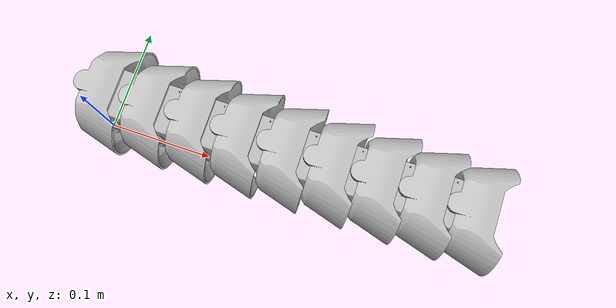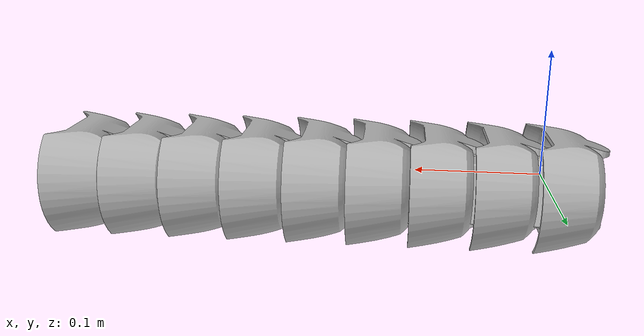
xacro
<?xml version="1.0"?>

<robot xmlns:xacro="http://www.ros.org/wiki/xacro" name="snake_PY">
  <xacro:include filename="$(find snake_test)/robot_description/urdf/snake_description_PY.xacro"/>

  <gazebo>
      <plugin
          name="gazebo_ros_control"
          filename="libgazebo_ros_control.so">
          <robotNamespace>/snake</robotNamespace>
          <robotSimType>gazebo_ros_control/DefaultRobotHWSim</robotSimType>
      </plugin>
  </gazebo>

  <link name="base_footprint">
    <visual>
        <origin xyz="0 0 0" rpy="0 0 0" />
        <geometry>
            <box size="0.001 0.001 0.001" />
        </geometry>
    </visual>
  </link>

  <link
    name="base_link">
    <inertial>
      <origin
        xyz="-0.0114 -1.1316E-05 -0.026545"
        rpy="0 0 0" />
      <mass
        value="0.05761" />
      <inertia
        ixx="2.7384E-05"
        ixy="1.5995E-08"
        ixz="3.204E-08"
        iyy="1.2924E-05"
        iyz="-2.7637E-10"
        izz="2.8839E-05" />
    </inertial>
    <visual>
      <origin
        xyz="0 0 0"
        rpy="0 0 0" />
      <geometry>
        <mesh
          filename="package://snake_test/meshes/snake_PY/base_link.STL" />
      </geometry>
      <material
        name="">
        <color
          rgba="0.75294 0.75294 0.75294 1" />
      </material>
    </visual>
    <collision>
      <origin
        xyz="0 0 0"
        rpy="0 0 0" />
      <geometry>
        <mesh
          filename="package://snake_test/meshes/snake_PY/base_link.STL" />
      </geometry>
    </collision>
  </link>

  <gazebo reference="base_link">
    <mu1>100.0</mu1>
    <mu2>1</mu2>
  </gazebo>

  <joint
    name="base_footprint_joint"
    type="fixed">
    <origin
      xyz="0 0 0"
      rpy="1.5708 0 0" />
    <parent
      link="base_footprint"/>
    <child
      link="base_link" />
  </joint>

  <link
    name="link1">
    <inertial>
      <origin
        xyz="0.0065998 0.0027517 -0.024443"
        rpy="0 0 0" />
      <mass
        value="0.046642" />
      <inertia
        ixx="1.3666E-05"
        ixy="6.742E-07"
        ixz="-6.6336E-07"
        iyy="1.1195E-05"
        iyz="3.1036E-06"
        izz="1.1233E-05" />
    </inertial>
    <visual>
      <origin
        xyz="0 0 0"
        rpy="0 0 0" />
      <geometry>
        <mesh
          filename="package://snake_test/meshes/snake_PY/link1.STL" />
      </geometry>
      <material
        name="">
        <color
          rgba="0.75294 0.75294 0.75294 1" />
      </material>
    </visual>
    <collision>
      <origin
        xyz="0 0 0"
        rpy="0 0 0" />
      <geometry>
        <mesh
          filename="package://snake_test/meshes/snake_PY/link1.STL" />
      </geometry>
    </collision>
  </link>

  <gazebo reference="link1">
    <mu1>100.0</mu1>
    <mu2>1</mu2>
  </gazebo>

  <joint
    name="joint1"
    type="revolute">
    <origin
      xyz="0 0 0"
      rpy="0 0 0" />
    <parent
      link="base_link" />
    <child
      link="link1" />
    <axis
      xyz="0 0 -1" />
    <limit
      lower="-0.80"
      upper="0.80"
      effort="20"
      velocity="5" />
  </joint>

  <xacro:link_body parent_link="link1" child_link="link2" joint_name="joint2"/>
  <xacro:link_servo parent_link="link2" child_link="link3" joint_name="joint3"/>
  <xacro:link_body parent_link="link3" child_link="link4" joint_name="joint4"/>
  <xacro:link_servo parent_link="link4" child_link="link5" joint_name="joint5"/>
  <xacro:link_body parent_link="link5" child_link="link6" joint_name="joint6"/>
  <xacro:link_servo parent_link="link6" child_link="link7" joint_name="joint7"/>
  <xacro:link_body parent_link="link7" child_link="link8" joint_name="joint8"/>
  <xacro:link_servo parent_link="link8" child_link="link9" joint_name="joint9"/>
  <xacro:link_body parent_link="link9" child_link="link10" joint_name="joint10"/>
  <xacro:link_servo parent_link="link10" child_link="link11" joint_name="joint11"/>
  <xacro:link_body parent_link="link11" child_link="link12" joint_name="joint12"/>
  <xacro:link_servo parent_link="link12" child_link="link13" joint_name="joint13"/>
  <xacro:link_body parent_link="link13" child_link="link14" joint_name="joint14"/>
  <xacro:link_servo parent_link="link14" child_link="link15" joint_name="joint15"/>
  <xacro:link_body parent_link="link15" child_link="link16" joint_name="joint16"/>

  <xacro:transision number="1"/>
  <xacro:transision number="2"/>
  <xacro:transision number="3"/>
  <xacro:transision number="4"/>
  <xacro:transision number="5"/>
  <xacro:transision number="6"/>
  <xacro:transision number="7"/>
  <xacro:transision number="8"/>
  <xacro:transision number="9"/>
  <xacro:transision number="10"/>
  <xacro:transision number="11"/>
  <xacro:transision number="12"/>
  <xacro:transision number="13"/>
  <xacro:transision number="14"/>
  <xacro:transision number="15"/>
  <xacro:transision number="16"/>

</robot>

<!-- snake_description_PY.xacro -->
<robot xmlns:xacro="http://www.ros.org/wiki/xacro" name="snake_PY">

  <xacro:macro name="link_servo" params="parent_link child_link joint_name">
    <link
      name="${child_link}">
      <inertial>
        <origin
          xyz="0.0065998 0.0027517 -0.024443"
          rpy="0 0 0" />
        <mass
          value="0.046642" />
        <inertia
          ixx="1.3666E-05"
          ixy="6.742E-07"
          ixz="-6.6336E-07"
          iyy="1.1195E-05"
          iyz="3.1036E-06"
          izz="1.1233E-05" />
      </inertial>
      <visual>
        <origin
          xyz="0 0 0"
          rpy="0 0 0" />
        <geometry>
          <mesh
            filename="package://snake_test/meshes/snake_PY/servo.STL" />
        </geometry>
        <material
          name="">
          <color
            rgba="0.75294 0.75294 0.75294 1" />
        </material>
      </visual>
      <collision>
        <origin
          xyz="0 0 0"
          rpy="0 0 0" />
        <geometry>
          <mesh
            filename="package://snake_test/meshes/snake_PY/servo.STL" />
        </geometry>
      </collision>
    </link>

    <gazebo reference="${child_link}">
      <mu1>100.0</mu1>
      <mu2>1</mu2>
    </gazebo>

    <joint
      name="${joint_name}"
      type="revolute">
      <origin
        xyz="0.033148 -0.0276 -0.0276"
        rpy="1.5708 0 0" />
      <parent
        link="${parent_link}" />
      <child
        link="${child_link}" />
      <axis
        xyz="0 0 -1" />
      <limit
        lower="-0.80"
        upper="0.80"
        effort="20"
        velocity="5" />
    </joint>
  </xacro:macro>

  <xacro:macro name="link_body" params="parent_link child_link joint_name">
    <link
        name="${child_link}">
        <inertial>
            <origin
                xyz="0.021749 -0.0010555 -0.027611"
                rpy="0 0 0" />
        <mass
            value="0.05761" />
        <inertia
            ixx="2.7384E-05"
            ixy="-3.2039E-08"
            ixz="1.5994E-08"
            iyy="2.8839E-05"
            iyz="2.7878E-10"
            izz="1.2924E-05" />
        </inertial>
        <visual>
            <origin
                xyz="0 0 0"
                rpy="0 0 0" />
            <geometry>
                <mesh
                    filename="package://snake_test/meshes/snake_PY/body.STL" />
            </geometry>
            <material
                name="">
                <color
                    rgba="0.75294 0.75294 0.75294 1" />
            </material>
        </visual>
        <collision>
            <origin
                xyz="0 0 0"
                rpy="0 0 0" />
            <geometry>
                <mesh
                    filename="package://snake_test/meshes/snake_PY/body.STL" />
            </geometry>
        </collision>
    </link>

    <gazebo reference="${child_link}">
        <mu1>100.0</mu1>
        <mu2>1</mu2>
    </gazebo>

    <joint
        name="${joint_name}"
        type="revolute">
        <origin
            xyz="0.013 0.0276 -0.0276"
            rpy="-1.5708 0 0" />
        <parent
            link="${parent_link}" />
        <child
            link="${child_link}" />
        <axis
            xyz="0 0 -1" />
        <limit
            lower="-0.80"
            upper="0.80"
            effort="20"
            velocity="5" />
    </joint>
  </xacro:macro>

    <xacro:macro name="transision" params="number">
        <transmission
            name="trans${number}">
            <type>transmission_interface/SimpleTransmission</type>
            <joint
                name="joint${number}">
                <hardwareInterface>hardware_interface/PositionJointInterface</hardwareInterface>
            </joint>
            <actuator
                name="servo${number}">
                <mechanicalReduction>1</mechanicalReduction>
                <hardwareInterface>hardware_interface/PositionJointInterface</hardwareInterface>
            </actuator>
        </transmission>
    </xacro:macro>
</robot>
